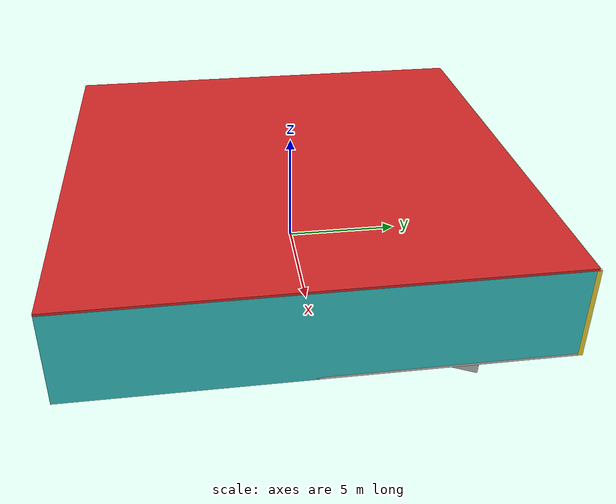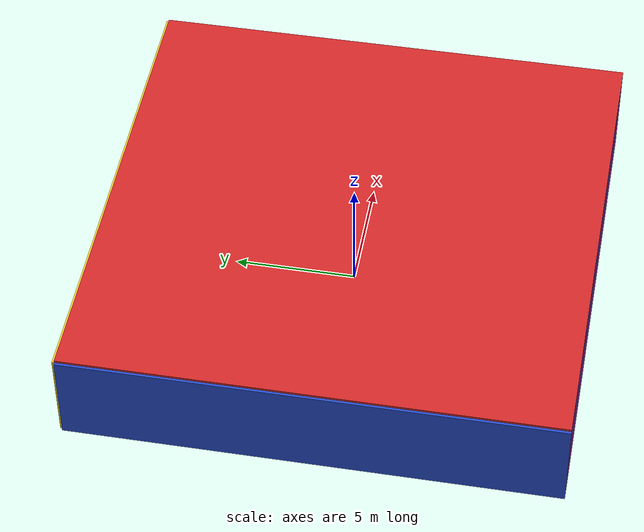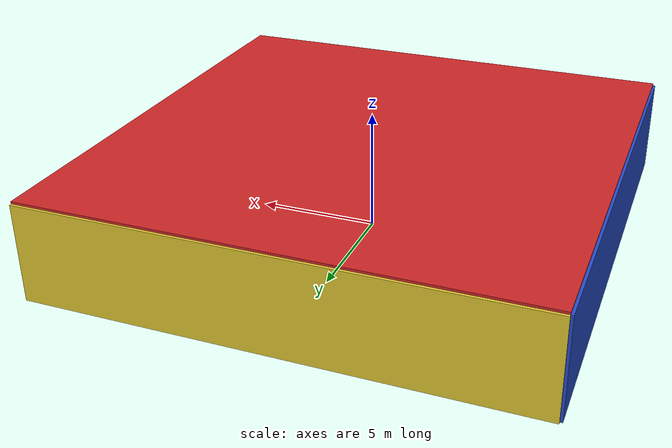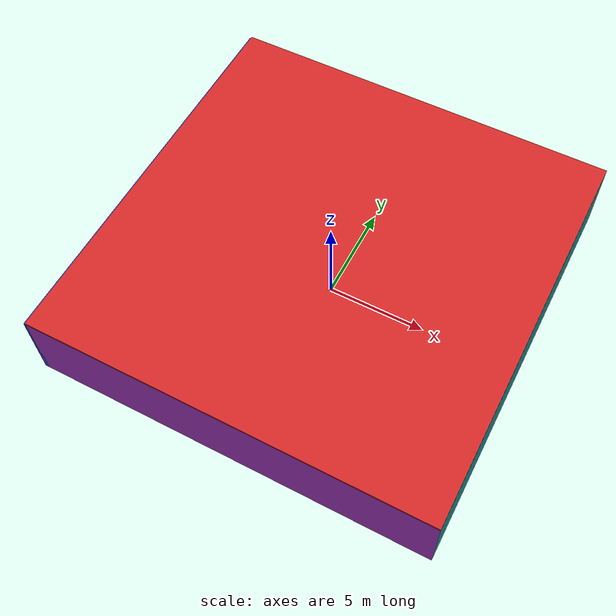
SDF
<sdf version="1.4">
 <world name="default">
  <physics type="ode">
   <max_step_size>0.001</max_step_size>
   <real_time_factor>1</real_time_factor>
   <real_time_update_rate>1000</real_time_update_rate>
   <gravity>0 0 -9.8</gravity>
  </physics>
  <scene><ambient>0.4 0.4 0.4 1</ambient><background>0.7 0.7 0.7 1</background><shadows>1</shadows></scene>
  <model name="Surrounding">
   <static>1</static>
   <link name="Ceiling">
    <collision name="Ceiling_Collision"><geometry><box><size>20 20 0.1</size></box></geometry></collision>
    <visual name="Ceiling_Visual">
     <geometry><box><size>20 20 0.1</size></box></geometry>
     <material>
      <script><uri>file://media/materials/scripts/gazebo.material</uri><name>Gazebo/RedBright</name></script>
     </material>
    </visual>
    <pose>0 0 4.05 0 0 0</pose>
   </link>
   <link name="Wall_South">
    <collision name="Wall_South_Collision">
     <geometry><box><size>20 0 4</size></box></geometry>
     <pose>0 0 2 0 -0 0</pose>
    </collision>
    <visual name="Wall_South_Visual">
     <pose>0 0 2 0 -0 0</pose>
     <geometry><box><size>20 0 4</size></box></geometry>
     <material>
      <script><uri>file://media/materials/scripts/gazebo.material</uri><name>Gazebo/PurpleGlow</name></script>
     </material>
    </visual>
    <velocity_decay><linear>0</linear><angular>0</angular></velocity_decay>
    <pose>0 -10 0 0 -0 0</pose>
   </link>
   <link name="Wall_East">
    <collision name="Wall_21_Collision">
     <geometry><box><size>20 0 4</size></box></geometry>
     <pose>0 0 2 0 -0 0</pose>
    </collision>
    <visual name="Wall_21_Visual">
     <pose>0 0 2 0 -0 0</pose>
     <geometry><box><size>20 0 4</size></box></geometry>
     <material>
      <script><uri>file://media/materials/scripts/gazebo.material</uri><name>Gazebo/Turquoise</name></script>
     </material>
    </visual>
    <velocity_decay><linear>0</linear><angular>0</angular></velocity_decay>
    <pose>10 0 0 0 -0 1.5708</pose>
   </link>
   <link name="Wall_North">
    <collision name="Wall_22_Collision">
     <geometry><box><size>20 0.2 4</size></box></geometry>
     <pose>0 0 2 0 -0 0</pose>
    </collision>
    <visual name="Wall_22_Visual">
     <pose>0 0 2 0 -0 0</pose>
     <geometry><box><size>20 0.2 4</size></box></geometry>
     <material>
      <script><uri>file://media/materials/scripts/gazebo.material</uri><name>Gazebo/ZincYellow</name></script>
     </material>
    </visual>
    <velocity_decay><linear>0</linear><angular>0</angular></velocity_decay>
    <pose>0 10 0 0 -0 0</pose>
   </link>
   <link name="Wall_West">
    <collision name="Wall_23_Collision">
     <geometry><box><size>20 0.2 4</size></box></geometry>
     <pose>0 0 2 0 -0 0</pose>
    </collision>
    <visual name="Wall_23_Visual">
     <pose>0 0 2 0 -0 0</pose>
     <geometry><box><size>20 0.2 4</size></box></geometry>
     <material>
      <script><uri>file://media/materials/scripts/gazebo.material</uri><name>Gazebo/BlueGlow</name></script>
     </material>
    </visual>
    <velocity_decay><linear>0</linear><angular>0</angular></velocity_decay>
    <pose>-10 0 0 0 0 -1.5708</pose>
   </link>
   <link name="Ground_link">
    <collision name="collision">
     <pose>0 0 .05 0 -0 0</pose>
     <geometry><box><size>20 20 0.1</size></box></geometry>
    </collision>
    <visual name="visual">
     <pose>0 0 .05 0 -0 0</pose>
     <geometry><box><size>20 20 0.1</size></box></geometry>
     <material>
      <script><uri>file://media/materials/scripts/gazebo.material</uri><name>Gazebo/LightOn</name></script>
     </material>
    </visual>
   </link>
   <static>1</static>
  </model>
  <spherical_coordinates>
   <surface_model>EARTH_WGS84</surface_model>
   <latitude_deg>0</latitude_deg>
   <longitude_deg>0</longitude_deg>
   <elevation>0</elevation>
   <heading_deg>0</heading_deg>
  </spherical_coordinates>
  <light name="lightball_0" type="diffuse">
   <diffuse>0.8 0.8 0.8 1</diffuse>
   <specular>0.2 0.2 0.2 1</specular>
   <attenuation>
    <range>100</range>
    <constant>0.7</constant>
    <linear>0.01</linear>
    <quadratic>0.001</quadratic>
   </attenuation>
   <direction>-0.5 0.1 -0.9</direction>
   <pose>-6.19751002128 1.52144337878 3.4140488503 0 0 0</pose>
  </light>
  <light name="lightball_1" type="diffuse">
   <diffuse>0.8 0.8 0.8 1</diffuse>
   <specular>0.2 0.2 0.2 1</specular>
   <attenuation>
    <range>100</range>
    <constant>0.7</constant>
    <linear>0.01</linear>
    <quadratic>0.001</quadratic>
   </attenuation>
   <direction>-0.5 0.1 -0.9</direction>
   <pose>-4.5035976352 -8.00467443344 2.84998087771 0 0 0</pose>
  </light>
  <include>
   <uri>model://robocup_3Dsim_goal</uri>
   <pose>-3.51276970001 5.42474468753 0 0 0 0.0579967881052</pose>
  </include>
  <include>
   <uri>model://construction_cone</uri>
   <pose>-1.91674184522 -0.514743175525 0 0 0 3.01649632444</pose>
  </include>
  <include>
   <uri>model://robocup_3Dsim_goal</uri>
   <pose>-0.648706732515 8.0670580335 0 0 0 0.925642532215</pose>
  </include>
  <include>
   <uri>model://textured_shapes</uri>
   <pose>0.665281501813 4.25863051695 0 0 0 0.798335386937</pose>
  </include>
  <include><uri>model://table</uri><pose>8.45073175788 -1.86301222714 0 0 0 1.94259660329</pose></include>
  <include>
   <uri>model://textured_shapes</uri>
   <pose>7.9003968723 6.39671301578 0 0 0 1.11322182605</pose>
  </include>
 </world>
</sdf>

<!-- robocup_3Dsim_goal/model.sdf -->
<sdf version="1.5">
  <model name="robocup_3d_goal">
    <static>true</static>
    <link name="left_post">
      <pose>0 1.05 0.45 0 0 0</pose>
      <collision name="collision">
        <geometry>
          <cylinder>
            <radius>0.05</radius>
            <length>0.9</length>
          </cylinder>
        </geometry>
      </collision>
      <visual name="visual">
        <geometry>
          <cylinder>
            <radius>0.05</radius>
            <length>0.9</length>
          </cylinder>
        </geometry>
        <material>
          <script>
            <uri>file://media/materials/scripts/gazebo.material</uri>
            <name>Gazebo/ZincYellow</name>
          </script>
        </material>
      </visual>
    </link>
    <link name="left_support_horiz_lower">
      <pose>0.30 1.05 0.01 0 0 0</pose>
      <collision name="collision">
        <geometry>
          <box>
            <size>0.50 0.02 0.02</size>
          </box>
        </geometry>
      </collision>
      <visual name="visual">
        <geometry>
          <box>
            <size>0.50 0.02 0.02</size>
          </box>
        </geometry>
        <material>
          <script>
            <uri>file://media/materials/scripts/gazebo.material</uri>
            <name>Gazebo/White</name>
          </script>
        </material>
      </visual>
    </link>
    <link name="left_support_horiz_upper">
      <pose>0.30 1.05 0.79 0 0 0</pose>
      <collision name="collision">
        <geometry>
          <box>
            <size>0.50 0.02 0.02</size>
          </box>
        </geometry>
      </collision>
      <visual name="visual">
        <geometry>
          <box>
            <size>0.50 0.02 0.02</size>
          </box>
        </geometry>
        <material>
          <script>
            <uri>file://media/materials/scripts/gazebo.material</uri>
            <name>Gazebo/White</name>
          </script>
        </material>
      </visual>
    </link>
    <link name="left_support_vertical">
      <pose>0.56 1.05 0.4 0 1.5708 0</pose>
      <collision name="collision">
        <geometry>
          <box>
            <size>0.80 0.02 0.02</size>
          </box>
        </geometry>
      </collision>
      <visual name="visual">
        <geometry>
          <box>
            <size>0.80 0.02 0.02</size>
          </box>
        </geometry>
        <material>
          <script>
            <uri>file://media/materials/scripts/gazebo.material</uri>
            <name>Gazebo/White</name>
          </script>
        </material>
      </visual>
    </link>
    <link name="right_support_horiz_lower">
      <pose>0.30 -1.05 0.01 0 0 0</pose>
      <collision name="collision">
        <geometry>
          <box>
            <size>0.50 0.02 0.02</size>
          </box>
        </geometry>
      </collision>
      <visual name="visual">
        <geometry>
          <box>
            <size>0.50 0.02 0.02</size>
          </box>
        </geometry>
        <material>
          <script>
            <uri>file://media/materials/scripts/gazebo.material</uri>
            <name>Gazebo/White</name>
          </script>
        </material>
      </visual>
    </link>
    <link name="right_support_horiz_upper">
      <pose>0.30 -1.05 0.79 0 0 0</pose>
      <collision name="collision">
        <geometry>
          <box>
            <size>0.50 0.02 0.02</size>
          </box>
        </geometry>
      </collision>
      <visual name="visual">
        <geometry>
          <box>
            <size>0.50 0.02 0.02</size>
          </box>
        </geometry>
        <material>
          <script>
            <uri>file://media/materials/scripts/gazebo.material</uri>
            <name>Gazebo/White</name>
          </script>
        </material>
      </visual>
    </link>
    <link name="right_support_vertical">
      <pose>0.56 -1.05 0.4 0 1.5708 0</pose>
      <collision name="collision">
        <geometry>
          <box>
            <size>0.80 0.02 0.02</size>
          </box>
        </geometry>
      </collision>
      <visual name="visual">
        <geometry>
          <box>
            <size>0.80 0.02 0.02</size>
          </box>
        </geometry>
        <material>
          <script>
            <uri>file://media/materials/scripts/gazebo.material</uri>
            <name>Gazebo/White</name>
          </script>
        </material>
      </visual>
    </link>
    <link name="center_support_horiz_lower">
      <pose>0.56 0 0.01 0 1.5708 0</pose>
      <collision name="collision">
        <geometry>
          <box>
            <size>0.02 2.08 0.02</size>
          </box>
        </geometry>
      </collision>
      <visual name="visual">
        <geometry>
          <box>
            <size>0.02 2.08 0.02</size>
          </box>
        </geometry>
        <material>
          <script>
            <uri>file://media/materials/scripts/gazebo.material</uri>
            <name>Gazebo/White</name>
          </script>
        </material>
      </visual>
    </link>
    <link name="center_support_horiz_upper">
      <pose>0.56 0 0.79 0 1.5708 0</pose>
      <collision name="collision">
        <geometry>
          <box>
            <size>0.02 2.08 0.02</size>
          </box>
        </geometry>
      </collision>
      <visual name="visual">
        <geometry>
          <box>
            <size>0.02 2.08 0.02</size>
          </box>
        </geometry>
        <material>
          <script>
            <uri>file://media/materials/scripts/gazebo.material</uri>
            <name>Gazebo/White</name>
          </script>
        </material>
      </visual>
    </link>
    <link name="right_post">
      <pose>0 -1.05 0.45 0 0 0</pose>
      <collision name="collision">
        <geometry>
          <cylinder>
            <radius>0.05</radius>
            <length>0.9</length>
          </cylinder>
        </geometry>
      </collision>
      <visual name="visual">
        <geometry>
          <cylinder>
            <radius>0.05</radius>
            <length>0.9</length>
          </cylinder>
        </geometry>
        <material>
          <script>
            <uri>file://media/materials/scripts/gazebo.material</uri>
            <name>Gazebo/ZincYellow</name>
          </script>
        </material>
      </visual>
    </link>
    <link name="crossbar">
      <pose>0 0 0.85 1.57 1.57 0</pose>
      <collision name="collision">
        <geometry>
          <cylinder>
            <radius>0.05</radius>
            <length>2.0</length>
          </cylinder>
        </geometry>
      </collision>
      <visual name="visual">
        <geometry>
          <cylinder>
            <radius>0.05</radius>
            <length>2.0</length>
          </cylinder>
        </geometry>
        <material>
          <script>
            <uri>file://media/materials/scripts/gazebo.material</uri>
            <name>Gazebo/ZincYellow</name>
          </script>
        </material>
      </visual>
    </link>
    <link name="center_net">
      <pose>0.56 0 0.40 0 0 0</pose>
      <collision name="collision">
        <geometry>
          <box>
            <size>0.01 2.1 0.80</size>
          </box>
        </geometry>
      </collision>
      <visual name="visual">
        <geometry>
          <box>
            <size>0.01 2.1 0.80</size>
          </box>
        </geometry>
        <material>
          <script>
            <uri>model://../model_source/models/robocup09_spl_field/materials/scripts/</uri>
            <uri>model://../model_source/models/robocup09_spl_field/materials/textures/</uri>
            <name>RoboCup/Net</name>
          </script>
        </material>
      </visual>
    </link>
    <link name="left_net">
      <pose>0.30 1.05 0.40 0 0 0</pose>
      <collision name="collision">
        <geometry>
          <box>
            <size>0.50 0.01 0.76</size>
          </box>
        </geometry>
      </collision>
      <visual name="visual">
        <geometry>
          <box>
            <size>0.50 0.01 0.76</size>
          </box>
        </geometry>
        <material>
          <script>
            <uri>model://../model_source/models/robocup09_spl_field/materials/scripts/</uri>
            <uri>model://../model_source/models/robocup09_spl_field/materials/textures/</uri>
            <name>RoboCup/Net</name>
          </script>
        </material>
      </visual>
    </link>
    <link name="right_net">
      <pose>0.30 -1.05 0.40 0 0 0</pose>
      <collision name="collision">
        <geometry>
          <box>
            <size>0.50 0.01 0.76</size>
          </box>
        </geometry>
      </collision>
      <visual name="visual">
        <geometry>
          <box>
            <size>0.50 0.01 0.76</size>
          </box>
        </geometry>
        <material>
          <script>
            <uri>model://../model_source/models/robocup09_spl_field/materials/scripts/</uri>
            <uri>model://../model_source/models/robocup09_spl_field/materials/textures/</uri>
            <name>RoboCup/Net</name>
          </script>
        </material>
      </visual>
    </link>
  </model>
</sdf>

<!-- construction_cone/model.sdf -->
<sdf version="1.5">
  <model name="Construction Cone">
    <link name="link">
      <collision name="collision">
        <geometry>
          <mesh>
            <scale>10 10 10</scale>
            <uri>file://isr-testbed/construction_cone/meshes/construction_cone.dae</uri>
          </mesh>
        </geometry>
      </collision>
      <visual name="visual">
        <geometry>
          <mesh>
            <scale>10 10 10</scale>
            <uri>file://isr-testbed/construction_cone/meshes/construction_cone.dae</uri>
          </mesh>
        </geometry>
      </visual>
    </link>
  </model>
</sdf>

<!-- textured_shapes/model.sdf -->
<sdf version="1.6">
  <model name="textured_shapes">
    <pose>0 0 0.5 0 0 0</pose>
    <link name="box">
      <pose>0 -1.5 0 0 0 0</pose>
      <collision name="collision">
        <geometry>
          <box>
            <size>1 1 1</size>
          </box>
        </geometry>
      </collision>
      <visual name="visual">
        <geometry>
          <box>
            <size>1 1 1</size>
          </box>
        </geometry>
        <material>
          <script>
            <uri>model://../model_source/models/textured_shapes/materials/scripts</uri>
            <uri>model://../model_source/models/textured_shapes/materials/textures</uri>
            <name>TexturedShape/Squares</name>
          </script>
        </material>
      </visual>
    </link>
    <link name="sphere">
      <collision name="collision">
        <geometry>
          <sphere>
            <radius>0.5</radius>
          </sphere>
        </geometry>
      </collision>
      <visual name="visual">
        <geometry>
          <sphere>
            <radius>0.5</radius>
          </sphere>
        </geometry>
        <material>
          <script>
            <uri>model://../model_source/models/textured_shapes/materials/scripts</uri>
            <uri>model://../model_source/models/textured_shapes/materials/textures</uri>
            <name>TexturedShape/Squares</name>
          </script>
        </material>
      </visual>
    </link>
    <link name="cylinder">
      <pose>0 1.5 0 0 0 0</pose>
      <collision name="collision">
        <geometry>
          <cylinder>
            <radius>0.5</radius>
            <length>1</length>
          </cylinder>
        </geometry>
      </collision>
      <visual name="visual">
        <geometry>
          <cylinder>
            <radius>0.5</radius>
            <length>1</length>
          </cylinder>
        </geometry>
        <material>
          <script>
            <uri>model://../model_source/models/textured_shapes/materials/scripts</uri>
            <uri>model://../model_source/models/textured_shapes/materials/textures</uri>
            <name>TexturedShape/Squares</name>
          </script>
        </material>
      </visual>
    </link>
  </model>
</sdf>

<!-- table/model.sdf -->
<sdf version="1.5">
  <model name="table">
    <static>true</static>
    <link name="link">
      <collision name="surface">
        <pose>0 0 1.0 0 0 0</pose>
        <geometry>
          <box>
            <size>1.5 0.8 0.03</size>
          </box>
        </geometry>
        <surface>
          <friction>
            <ode>
              <mu>0.6</mu>
              <mu2>0.6</mu2>
            </ode>
          </friction>
        </surface>
      </collision>
      <visual name="visual1">
        <pose>0 0 1.0 0 0 0</pose>
        <geometry>
          <box>
            <size>1.5 0.8 0.03</size>
          </box>
        </geometry>
        <material>
          <script>
            <uri>model://media/materials/scripts/gazebo.material</uri>
            <name>Gazebo/Wood</name>
          </script>
        </material>
      </visual>
      <collision name="front_left_leg">
        <pose>0.68 0.38 0.5 0 0 0</pose>
        <geometry>
          <cylinder>
            <radius>0.02</radius>
            <length>1.0</length>
          </cylinder>
        </geometry>
      </collision>
      <visual name="front_left_leg">
        <pose>0.68 0.38 0.5 0 0 0</pose>
        <geometry>
          <cylinder>
            <radius>0.02</radius>
            <length>1.0</length>
          </cylinder>
        </geometry>
        <material>
          <script>
            <uri>model://media/materials/scripts/gazebo.material</uri>
            <name>Gazebo/Grey</name>
          </script>
        </material>
      </visual>
      <collision name="front_right_leg">
        <pose>0.68 -0.38 0.5 0 0 0</pose>
        <geometry>
          <cylinder>
            <radius>0.02</radius>
            <length>1.0</length>
          </cylinder>
        </geometry>
      </collision>
      <visual name="front_right_leg">
        <pose>0.68 -0.38 0.5 0 0 0</pose>
        <geometry>
          <cylinder>
            <radius>0.02</radius>
            <length>1.0</length>
          </cylinder>
        </geometry>
        <material>
          <script>
            <uri>model://media/materials/scripts/gazebo.material</uri>
            <name>Gazebo/Grey</name>
          </script>
        </material>
      </visual>
      <collision name="back_right_leg">
        <pose>-0.68 -0.38 0.5 0 0 0</pose>
        <geometry>
          <cylinder>
            <radius>0.02</radius>
            <length>1.0</length>
          </cylinder>
        </geometry>
      </collision>
      <visual name="back_right_leg">
        <pose>-0.68 -0.38 0.5 0 0 0</pose>
        <geometry>
          <cylinder>
            <radius>0.02</radius>
            <length>1.0</length>
          </cylinder>
        </geometry>
        <material>
          <script>
            <uri>model://media/materials/scripts/gazebo.material</uri>
            <name>Gazebo/Grey</name>
          </script>
        </material>
      </visual>
      <collision name="back_left_leg">
        <pose>-0.68 0.38 0.5 0 0 0</pose>
        <geometry>
          <cylinder>
            <radius>0.02</radius>
            <length>1.0</length>
          </cylinder>
        </geometry>
      </collision>
      <visual name="back_left_leg">
        <pose>-0.68 0.38 0.5 0 0 0</pose>
        <geometry>
          <cylinder>
            <radius>0.02</radius>
            <length>1.0</length>
          </cylinder>
        </geometry>
        <material>
          <script>
            <uri>model://media/materials/scripts/gazebo.material</uri>
            <name>Gazebo/Grey</name>
          </script>
        </material>
      </visual>
    </link>
  </model>
</sdf>
